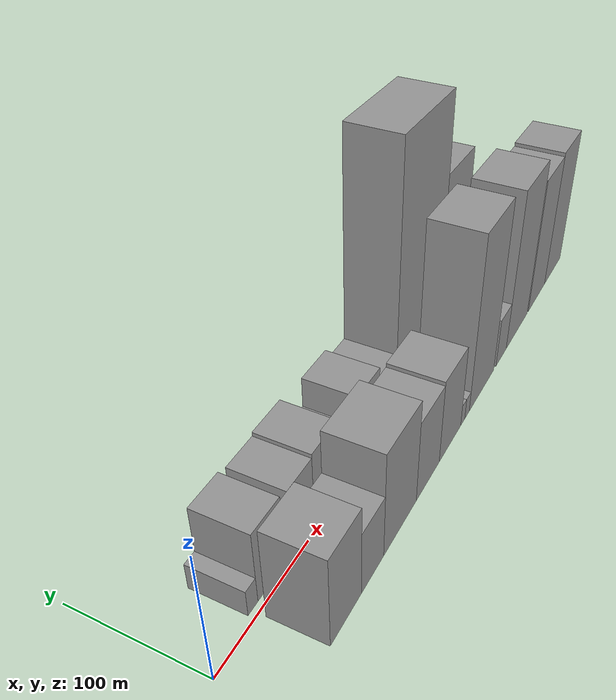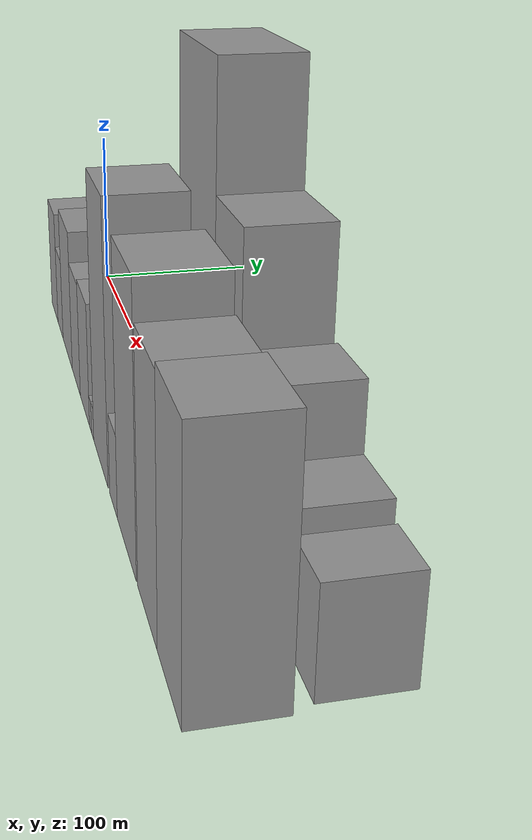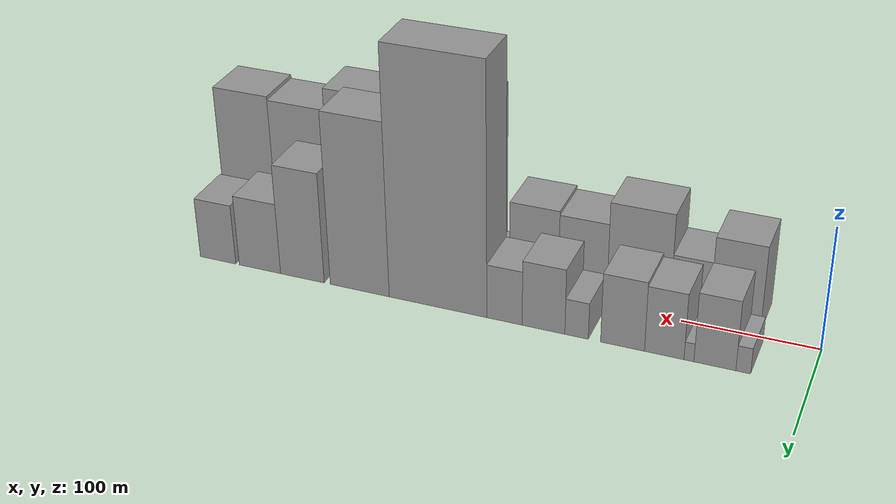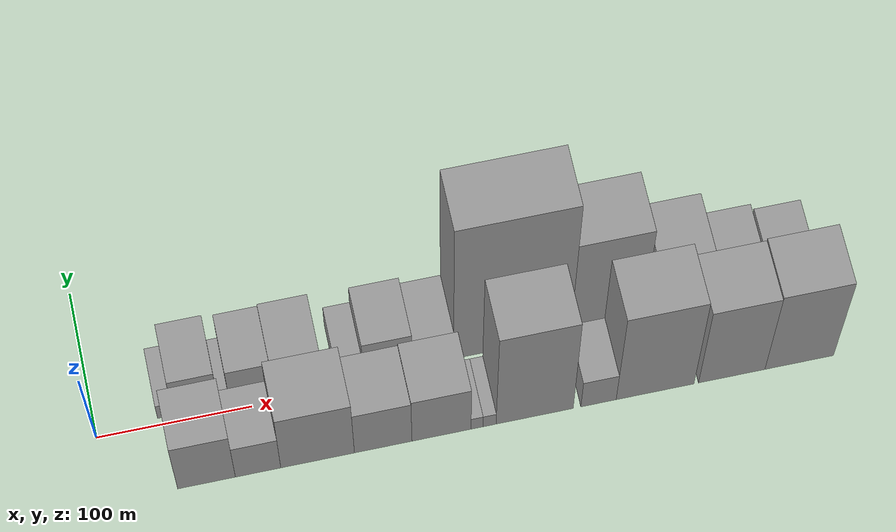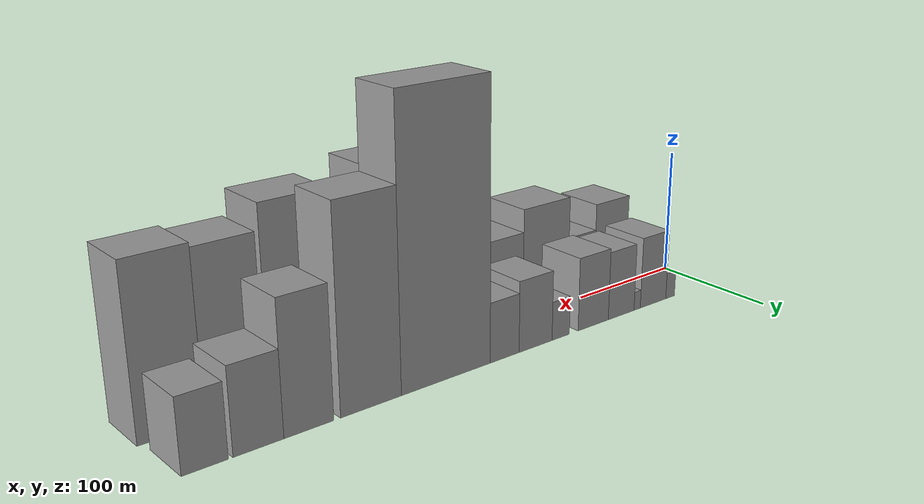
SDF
<sdf version="1.6">
 <world name="default">
  <scene>
   <sky><clouds><speed>12</speed></clouds></sky>
   <ambient>0.4 0.4 0.4 1</ambient>
   <background>0.7 0.7 0.7 1</background>
   <shadows>1</shadows>
  </scene>
  <gravity>0 0 -9.8066</gravity>
  <magnetic_field>6e-06 2.3e-05 -4.2e-05</magnetic_field>
  <physics default="0" name="default_physics" type="ode">
   <ode>
    <solver>
     <type>quick</type>
     <iters>10</iters>
     <sor>1.0</sor>
     <use_dynamic_moi_rescaling>0</use_dynamic_moi_rescaling>
    </solver>
    <constraints>
     <cfm>0</cfm>
     <erp>0.2</erp>
     <contact_max_correcting_vel>100</contact_max_correcting_vel>
     <contact_surface_layer>0.001</contact_surface_layer>
    </constraints>
   </ode>
   <max_step_size>0.004</max_step_size>
   <real_time_factor>1</real_time_factor>
   <real_time_update_rate>250</real_time_update_rate>
  </physics>
  <light name="sun" type="directional">
   <pose>0 0 10 0 0 0</pose>
   <diffuse>0.8 0.8 0.8 1</diffuse>
   <specular>0.2 0.2 0.2 1</specular>
   <attenuation>
    <range>1000</range>
    <constant>0.9</constant>
    <linear>0.01</linear>
    <quadratic>0.001</quadratic>
   </attenuation>
   <direction>-0.5 0.1 -0.9</direction>
  </light>
  <model name="building_1">
   <static>1</static>
   <pose>45.1310 24.5000 0 0.000000 0.000000 1.570796</pose>
   <link name="link">
    <pose>0 0 10.50 0 0 0</pose>
    <collision name="collision"><geometry><box><size>40.0000 10.2621 21.0000</size></box></geometry></collision>
    <visual name="visual">
     <cast_shadows>0</cast_shadows>
     <geometry><box><size>40.0000 10.2621 21.0000</size></box></geometry>
     <material>
      <script>
       <uri>model://grey_wall/materials/scripts</uri>
       <uri>model://grey_wall/materials/textures</uri>
       <name>vrc/grey_wall</name>
      </script>
     </material>
    </visual>
   </link>
  </model>
  <model name="building_2">
   <static>1</static>
   <pose>64.9373 24.5000 0 0.000000 0.000000 1.570796</pose>
   <link name="link">
    <pose>0 0 28.50 0 0 0</pose>
    <collision name="collision"><geometry><box><size>40.0000 29.3504 57.0000</size></box></geometry></collision>
    <visual name="visual">
     <cast_shadows>0</cast_shadows>
     <geometry><box><size>40.0000 29.3504 57.0000</size></box></geometry>
     <material>
      <script>
       <uri>model://grey_wall/materials/scripts</uri>
       <uri>model://grey_wall/materials/textures</uri>
       <name>vrc/grey_wall</name>
      </script>
     </material>
    </visual>
   </link>
  </model>
  <model name="building_3">
   <static>1</static>
   <pose>83.1225 24.5000 0 0.000000 0.000000 1.570796</pose>
   <link name="link">
    <pose>0 0 7.50 0 0 0</pose>
    <collision name="collision"><geometry><box><size>40.0000 7.0201 15.0000</size></box></geometry></collision>
    <visual name="visual">
     <cast_shadows>0</cast_shadows>
     <geometry><box><size>40.0000 7.0201 15.0000</size></box></geometry>
     <material>
      <script>
       <uri>model://grey_wall/materials/scripts</uri>
       <uri>model://grey_wall/materials/textures</uri>
       <name>vrc/grey_wall</name>
      </script>
     </material>
    </visual>
   </link>
  </model>
  <model name="building_4">
   <static>1</static>
   <pose>100.7517 24.5000 0 0.000000 0.000000 1.570796</pose>
   <link name="link">
    <pose>0 0 27.00 0 0 0</pose>
    <collision name="collision"><geometry><box><size>40.0000 28.2383 54.0000</size></box></geometry></collision>
    <visual name="visual">
     <cast_shadows>0</cast_shadows>
     <geometry><box><size>40.0000 28.2383 54.0000</size></box></geometry>
     <material>
      <script>
       <uri>model://grey_wall/materials/scripts</uri>
       <uri>model://grey_wall/materials/textures</uri>
       <name>vrc/grey_wall</name>
      </script>
     </material>
    </visual>
   </link>
  </model>
  <model name="building_5">
   <static>1</static>
   <pose>130.7815 24.5000 0 0.000000 0.000000 1.570796</pose>
   <link name="link">
    <pose>0 0 28.50 0 0 0</pose>
    <collision name="collision"><geometry><box><size>40.0000 31.8213 57.0000</size></box></geometry></collision>
    <visual name="visual">
     <cast_shadows>0</cast_shadows>
     <geometry><box><size>40.0000 31.8213 57.0000</size></box></geometry>
     <material>
      <script>
       <uri>model://grey_wall/materials/scripts</uri>
       <uri>model://grey_wall/materials/textures</uri>
       <name>vrc/grey_wall</name>
      </script>
     </material>
    </visual>
   </link>
  </model>
  <model name="building_6">
   <static>1</static>
   <pose>164.3739 24.5000 0 0.000000 0.000000 1.570796</pose>
   <link name="link">
    <pose>0 0 15.00 0 0 0</pose>
    <collision name="collision"><geometry><box><size>40.0000 17.3635 30.0000</size></box></geometry></collision>
    <visual name="visual">
     <cast_shadows>0</cast_shadows>
     <geometry><box><size>40.0000 17.3635 30.0000</size></box></geometry>
     <material>
      <script>
       <uri>model://grey_wall/materials/scripts</uri>
       <uri>model://grey_wall/materials/textures</uri>
       <name>vrc/grey_wall</name>
      </script>
     </material>
    </visual>
   </link>
  </model>
  <model name="building_7">
   <static>1</static>
   <pose>189.0775 24.5000 0 0.000000 0.000000 1.570796</pose>
   <link name="link">
    <pose>0 0 27.00 0 0 0</pose>
    <collision name="collision"><geometry><box><size>40.0000 32.0437 54.0000</size></box></geometry></collision>
    <visual name="visual">
     <cast_shadows>0</cast_shadows>
     <geometry><box><size>40.0000 32.0437 54.0000</size></box></geometry>
     <material>
      <script>
       <uri>model://grey_wall/materials/scripts</uri>
       <uri>model://grey_wall/materials/textures</uri>
       <name>vrc/grey_wall</name>
      </script>
     </material>
    </visual>
   </link>
  </model>
  <model name="building_8">
   <static>1</static>
   <pose>218.5295 24.5000 0 0.000000 0.000000 1.570796</pose>
   <link name="link">
    <pose>0 0 22.50 0 0 0</pose>
    <collision name="collision"><geometry><box><size>40.0000 26.8602 45.0000</size></box></geometry></collision>
    <visual name="visual">
     <cast_shadows>0</cast_shadows>
     <geometry><box><size>40.0000 26.8602 45.0000</size></box></geometry>
     <material>
      <script>
       <uri>model://grey_wall/materials/scripts</uri>
       <uri>model://grey_wall/materials/textures</uri>
       <name>vrc/grey_wall</name>
      </script>
     </material>
    </visual>
   </link>
  </model>
  <model name="building_9">
   <static>1</static>
   <pose>270.1884 24.5000 0 0.000000 0.000000 1.570796</pose>
   <link name="link">
    <pose>0 0 102.00 0 0 0</pose>
    <collision name="collision"><geometry><box><size>40.0000 76.4577 204.0000</size></box></geometry></collision>
    <visual name="visual">
     <cast_shadows>0</cast_shadows>
     <geometry><box><size>40.0000 76.4577 204.0000</size></box></geometry>
     <material>
      <script>
       <uri>model://grey_wall/materials/scripts</uri>
       <uri>model://grey_wall/materials/textures</uri>
       <name>vrc/grey_wall</name>
      </script>
     </material>
    </visual>
   </link>
  </model>
  <model name="building_10">
   <static>1</static>
   <pose>332.2457 24.5000 0 0.000000 0.000000 1.570796</pose>
   <link name="link">
    <pose>0 0 72.00 0 0 0</pose>
    <collision name="collision"><geometry><box><size>40.0000 47.6568 144.0000</size></box></geometry></collision>
    <visual name="visual">
     <cast_shadows>0</cast_shadows>
     <geometry><box><size>40.0000 47.6568 144.0000</size></box></geometry>
     <material>
      <script>
       <uri>model://grey_wall/materials/scripts</uri>
       <uri>model://grey_wall/materials/textures</uri>
       <name>vrc/grey_wall</name>
      </script>
     </material>
    </visual>
   </link>
  </model>
  <model name="building_11">
   <static>1</static>
   <pose>379.1722 24.5000 0 0.000000 0.000000 1.570796</pose>
   <link name="link">
    <pose>0 0 46.50 0 0 0</pose>
    <collision name="collision"><geometry><box><size>40.0000 36.1962 93.0000</size></box></geometry></collision>
    <visual name="visual">
     <cast_shadows>0</cast_shadows>
     <geometry><box><size>40.0000 36.1962 93.0000</size></box></geometry>
     <material>
      <script>
       <uri>model://grey_wall/materials/scripts</uri>
       <uri>model://grey_wall/materials/textures</uri>
       <name>vrc/grey_wall</name>
      </script>
     </material>
    </visual>
   </link>
  </model>
  <model name="building_12">
   <static>1</static>
   <pose>414.6842 24.5000 0 0.000000 0.000000 1.570796</pose>
   <link name="link">
    <pose>0 0 30.00 0 0 0</pose>
    <collision name="collision"><geometry><box><size>40.0000 34.8278 60.0000</size></box></geometry></collision>
    <visual name="visual">
     <cast_shadows>0</cast_shadows>
     <geometry><box><size>40.0000 34.8278 60.0000</size></box></geometry>
     <material>
      <script>
       <uri>model://grey_wall/materials/scripts</uri>
       <uri>model://grey_wall/materials/textures</uri>
       <name>vrc/grey_wall</name>
      </script>
     </material>
    </visual>
   </link>
  </model>
  <model name="building_13">
   <static>1</static>
   <pose>450.3041 24.5000 0 0.000000 0.000000 1.570796</pose>
   <link name="link">
    <pose>0 0 25.50 0 0 0</pose>
    <collision name="collision"><geometry><box><size>40.0000 30.4120 51.0000</size></box></geometry></collision>
    <visual name="visual">
     <cast_shadows>0</cast_shadows>
     <geometry><box><size>40.0000 30.4120 51.0000</size></box></geometry>
     <material>
      <script>
       <uri>model://grey_wall/materials/scripts</uri>
       <uri>model://grey_wall/materials/textures</uri>
       <name>vrc/grey_wall</name>
      </script>
     </material>
    </visual>
   </link>
  </model>
  <model name="building_14">
   <static>1</static>
   <pose>62.4474 -24.5000 0 0.000000 0.000000 1.570796</pose>
   <link name="link">
    <pose>0 0 36.00 0 0 0</pose>
    <collision name="collision"><geometry><box><size>40.0000 36.8948 72.0000</size></box></geometry></collision>
    <visual name="visual">
     <cast_shadows>0</cast_shadows>
     <geometry><box><size>40.0000 36.8948 72.0000</size></box></geometry>
     <material>
      <script>
       <uri>model://grey_wall/materials/scripts</uri>
       <uri>model://grey_wall/materials/textures</uri>
       <name>vrc/grey_wall</name>
      </script>
     </material>
    </visual>
   </link>
  </model>
  <model name="building_15">
   <static>1</static>
   <pose>95.4344 -24.5000 0 0.000000 0.000000 1.570796</pose>
   <link name="link">
    <pose>0 0 25.50 0 0 0</pose>
    <collision name="collision"><geometry><box><size>40.0000 29.0793 51.0000</size></box></geometry></collision>
    <visual name="visual">
     <cast_shadows>0</cast_shadows>
     <geometry><box><size>40.0000 29.0793 51.0000</size></box></geometry>
     <material>
      <script>
       <uri>model://grey_wall/materials/scripts</uri>
       <uri>model://grey_wall/materials/textures</uri>
       <name>vrc/grey_wall</name>
      </script>
     </material>
    </visual>
   </link>
  </model>
  <model name="building_16">
   <static>1</static>
   <pose>133.6368 -24.5000 0 0.000000 0.000000 1.570796</pose>
   <link name="link">
    <pose>0 0 42.00 0 0 0</pose>
    <collision name="collision"><geometry><box><size>40.0000 47.3255 84.0000</size></box></geometry></collision>
    <visual name="visual">
     <cast_shadows>0</cast_shadows>
     <geometry><box><size>40.0000 47.3255 84.0000</size></box></geometry>
     <material>
      <script>
       <uri>model://grey_wall/materials/scripts</uri>
       <uri>model://grey_wall/materials/textures</uri>
       <name>vrc/grey_wall</name>
      </script>
     </material>
    </visual>
   </link>
  </model>
  <model name="building_17">
   <static>1</static>
   <pose>175.8674 -24.5000 0 0.000000 0.000000 1.570796</pose>
   <link name="link">
    <pose>0 0 33.00 0 0 0</pose>
    <collision name="collision"><geometry><box><size>40.0000 37.1358 66.0000</size></box></geometry></collision>
    <visual name="visual">
     <cast_shadows>0</cast_shadows>
     <geometry><box><size>40.0000 37.1358 66.0000</size></box></geometry>
     <material>
      <script>
       <uri>model://grey_wall/materials/scripts</uri>
       <uri>model://grey_wall/materials/textures</uri>
       <name>vrc/grey_wall</name>
      </script>
     </material>
    </visual>
   </link>
  </model>
  <model name="building_18">
   <static>1</static>
   <pose>213.4984 -24.5000 0 0.000000 0.000000 1.570796</pose>
   <link name="link">
    <pose>0 0 34.50 0 0 0</pose>
    <collision name="collision"><geometry><box><size>40.0000 38.1262 69.0000</size></box></geometry></collision>
    <visual name="visual">
     <cast_shadows>0</cast_shadows>
     <geometry><box><size>40.0000 38.1262 69.0000</size></box></geometry>
     <material>
      <script>
       <uri>model://grey_wall/materials/scripts</uri>
       <uri>model://grey_wall/materials/textures</uri>
       <name>vrc/grey_wall</name>
      </script>
     </material>
    </visual>
   </link>
  </model>
  <model name="building_19">
   <static>1</static>
   <pose>236.4675 -24.5000 0 0.000000 0.000000 1.570796</pose>
   <link name="link">
    <pose>0 0 9.00 0 0 0</pose>
    <collision name="collision"><geometry><box><size>40.0000 7.8120 18.0000</size></box></geometry></collision>
    <visual name="visual">
     <cast_shadows>0</cast_shadows>
     <geometry><box><size>40.0000 7.8120 18.0000</size></box></geometry>
     <material>
      <script>
       <uri>model://grey_wall/materials/scripts</uri>
       <uri>model://grey_wall/materials/textures</uri>
       <name>vrc/grey_wall</name>
      </script>
     </material>
    </visual>
   </link>
  </model>
  <model name="building_20">
   <static>1</static>
   <pose>244.5960 -24.5000 0 0.000000 0.000000 1.570796</pose>
   <link name="link">
    <pose>0 0 9.00 0 0 0</pose>
    <collision name="collision"><geometry><box><size>40.0000 8.4450 18.0000</size></box></geometry></collision>
    <visual name="visual">
     <cast_shadows>0</cast_shadows>
     <geometry><box><size>40.0000 8.4450 18.0000</size></box></geometry>
     <material>
      <script>
       <uri>model://grey_wall/materials/scripts</uri>
       <uri>model://grey_wall/materials/textures</uri>
       <name>vrc/grey_wall</name>
      </script>
     </material>
    </visual>
   </link>
  </model>
  <model name="building_21">
   <static>1</static>
   <pose>273.9065 -24.5000 0 0.000000 0.000000 1.570796</pose>
   <link name="link">
    <pose>0 0 72.00 0 0 0</pose>
    <collision name="collision"><geometry><box><size>40.0000 50.1760 144.0000</size></box></geometry></collision>
    <visual name="visual">
     <cast_shadows>0</cast_shadows>
     <geometry><box><size>40.0000 50.1760 144.0000</size></box></geometry>
     <material>
      <script>
       <uri>model://grey_wall/materials/scripts</uri>
       <uri>model://grey_wall/materials/textures</uri>
       <name>vrc/grey_wall</name>
      </script>
     </material>
    </visual>
   </link>
  </model>
  <model name="building_22">
   <static>1</static>
   <pose>315.4921 -24.5000 0 0.000000 0.000000 1.570796</pose>
   <link name="link">
    <pose>0 0 21.00 0 0 0</pose>
    <collision name="collision"><geometry><box><size>40.0000 22.9950 42.0000</size></box></geometry></collision>
    <visual name="visual">
     <cast_shadows>0</cast_shadows>
     <geometry><box><size>40.0000 22.9950 42.0000</size></box></geometry>
     <material>
      <script>
       <uri>model://grey_wall/materials/scripts</uri>
       <uri>model://grey_wall/materials/textures</uri>
       <name>vrc/grey_wall</name>
      </script>
     </material>
    </visual>
   </link>
  </model>
  <model name="building_23">
   <static>1</static>
   <pose>352.4465 -24.5000 0 0.000000 0.000000 1.570796</pose>
   <link name="link">
    <pose>0 0 67.50 0 0 0</pose>
    <collision name="collision"><geometry><box><size>40.0000 50.9138 135.0000</size></box></geometry></collision>
    <visual name="visual">
     <cast_shadows>0</cast_shadows>
     <geometry><box><size>40.0000 50.9138 135.0000</size></box></geometry>
     <material>
      <script>
       <uri>model://grey_wall/materials/scripts</uri>
       <uri>model://grey_wall/materials/textures</uri>
       <name>vrc/grey_wall</name>
      </script>
     </material>
    </visual>
   </link>
  </model>
  <model name="building_24">
   <static>1</static>
   <pose>402.7213 -24.5000 0 0.000000 0.000000 1.570796</pose>
   <link name="link">
    <pose>0 0 58.50 0 0 0</pose>
    <collision name="collision"><geometry><box><size>40.0000 43.6358 117.0000</size></box></geometry></collision>
    <visual name="visual">
     <cast_shadows>0</cast_shadows>
     <geometry><box><size>40.0000 43.6358 117.0000</size></box></geometry>
     <material>
      <script>
       <uri>model://grey_wall/materials/scripts</uri>
       <uri>model://grey_wall/materials/textures</uri>
       <name>vrc/grey_wall</name>
      </script>
     </material>
    </visual>
   </link>
  </model>
  <model name="building_25">
   <static>1</static>
   <pose>447.1292 -24.5000 0 0.000000 0.000000 1.570796</pose>
   <link name="link">
    <pose>0 0 60.00 0 0 0</pose>
    <collision name="collision"><geometry><box><size>40.0000 45.1800 120.0000</size></box></geometry></collision>
    <visual name="visual">
     <cast_shadows>0</cast_shadows>
     <geometry><box><size>40.0000 45.1800 120.0000</size></box></geometry>
     <material>
      <script>
       <uri>model://grey_wall/materials/scripts</uri>
       <uri>model://grey_wall/materials/textures</uri>
       <name>vrc/grey_wall</name>
      </script>
     </material>
    </visual>
   </link>
  </model>
 </world>
</sdf>
